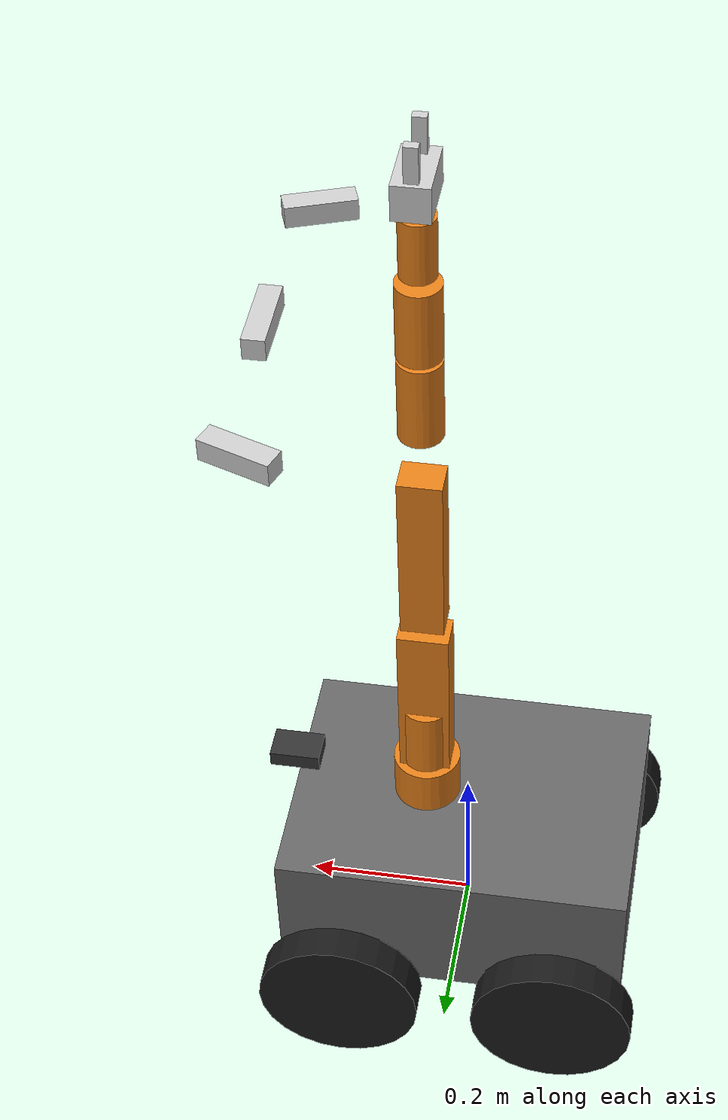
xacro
<?xml version="1.0"?>
<robot xmlns:xacro="http://www.ros.org/wiki/xacro" name="fire_robot">

  <xacro:property name="base_length"  value="0.420"/>
  <xacro:property name="base_width"   value="0.310"/>
  <xacro:property name="base_height"  value="0.184"/>
  <xacro:property name="wheel_radius" value="0.098"/>
  <xacro:property name="wheel_width"  value="0.040"/>
  <xacro:property name="wheelbase"   value="0.262"/>
  <xacro:property name="track"       value="0.37559"/>
  <xacro:property name="base_mass"    value="16.523"/>
  <xacro:property name="wheel_mass"   value="0.477"/>
  <xacro:property name="camera_z"     value="0.7890"/>
  <xacro:property name="camera_pitch" value="0.0"/>
  <xacro:property name="enable_sim_depth_camera" value="false"/>

  <xacro:macro name="box_inertia" params="m x y z">
    <inertial>
      <mass value="${m}"/>
      <inertia ixx="${m*(y*y+z*z)/12}" ixy="0" ixz="0"
               iyy="${m*(x*x+z*z)/12}" iyz="0"
               izz="${m*(x*x+y*y)/12}"/>
    </inertial>
  </xacro:macro>

  <xacro:macro name="cylinder_inertia" params="m r h">
    <inertial>
      <mass value="${m}"/>
      <inertia ixx="${m*(3*r*r+h*h)/12}" ixy="0" ixz="0"
               iyy="${m*(3*r*r+h*h)/12}" iyz="0"
               izz="${m*r*r/2}"/>
    </inertial>
  </xacro:macro>

  <!-- ============ base_footprint ============ -->
  <link name="base_footprint"/>

  <joint name="base_footprint_joint" type="fixed">
    <parent link="base_footprint"/>
    <child  link="base_link"/>
    <origin xyz="0 0 ${wheel_radius}" rpy="0 0 0"/>
  </joint>

  <!-- ============ 모바일 베이스 ============ -->
  <link name="base_link">
    <xacro:box_inertia m="${base_mass}"
                       x="${base_length}" y="${base_width}" z="${base_height}"/>
    <visual>
      <geometry>
        <box size="${base_length} ${base_width} ${base_height}"/>
      </geometry>
      <material name="gray"><color rgba="0.4 0.4 0.4 1.0"/></material>
    </visual>
    <collision>
      <geometry>
        <box size="${base_length} ${base_width} ${base_height}"/>
      </geometry>
    </collision>
  </link>

  <!-- ============ 바퀴 매크로 ============ -->
  <xacro:macro name="wheel" params="name x_pos y_pos">
    <link name="${name}_wheel">
      <xacro:cylinder_inertia m="${wheel_mass}" r="${wheel_radius}" h="${wheel_width}"/>
      <visual>
        <origin xyz="0 0 0" rpy="${pi/2} 0 0"/>
        <geometry>
          <cylinder radius="${wheel_radius}" length="${wheel_width}"/>
        </geometry>
        <material name="black"><color rgba="0.1 0.1 0.1 1.0"/></material>
      </visual>
      <collision>
        <origin xyz="0 0 0" rpy="${pi/2} 0 0"/>
        <geometry>
          <cylinder radius="${wheel_radius}" length="${wheel_width}"/>
        </geometry>
      </collision>
    </link>

    <joint name="${name}_wheel_joint" type="continuous">
      <parent link="base_link"/>
      <child  link="${name}_wheel"/>
      <origin xyz="${x_pos} ${y_pos} ${-base_height/2}" rpy="0 0 0"/>
      <axis xyz="0 1 0"/>
    </joint>
  </xacro:macro>

  <xacro:wheel name="front_left"  x_pos="${wheelbase/2}" y_pos="${track/2}"/>
  <xacro:wheel name="front_right" x_pos="${wheelbase/2}" y_pos="${-track/2}"/>
  <xacro:wheel name="rear_left"   x_pos="${-wheelbase/2}" y_pos="${track/2}"/>
  <xacro:wheel name="rear_right"  x_pos="${-wheelbase/2}" y_pos="${-track/2}"/>

  <!-- ============ 2D LiDAR ============ -->
  <link name="lidar_link">
    <visual>
      <geometry><box size="0.06 0.04 0.02"/></geometry>
      <material name="dark_gray"><color rgba="0.2 0.2 0.2 1.0"/></material>
    </visual>
    <collision>
      <geometry><box size="0.06 0.04 0.02"/></geometry>
    </collision>
    <inertial>
      <mass value="0.20"/>
      <inertia ixx="0.0001" ixy="0" ixz="0" iyy="0.0001" iyz="0" izz="0.0001"/>
    </inertial>
  </link>

  <joint name="lidar_joint" type="fixed">
    <parent link="base_link"/>
    <child  link="lidar_link"/>
    <origin xyz="${base_length/2} 0 ${base_height/2 + 0.04}" rpy="0 0 0"/>
  </joint>

  <!-- ============ RGB-D 카메라 마운트 ============ -->
  <link name="camera_link">
    <visual>
      <geometry><box size="0.025 0.090 0.025"/></geometry>
      <material name="silver"><color rgba="0.8 0.8 0.8 1.0"/></material>
    </visual>
    <collision>
      <geometry><box size="0.025 0.090 0.025"/></geometry>
    </collision>
    <inertial>
      <mass value="0.072"/>
      <inertia ixx="0.0001" ixy="0" ixz="0" iyy="0.0001" iyz="0" izz="0.0001"/>
    </inertial>
  </link>

  <joint name="camera_joint" type="fixed">
    <parent link="base_link"/>
    <child  link="camera_link"/>
    <!-- 베이스 전방 상단에 전방 하향 8도 틸트 -->
    <origin xyz="${base_length/2} 0 ${camera_z}" rpy="0 ${camera_pitch} 0"/>
  </joint>

  <!-- 카메라 광학 프레임 (ROS 컨벤션: Z 앞, X 오른쪽) -->
  <link name="camera_color_optical_frame"/>
  <joint name="camera_optical_joint" type="fixed">
    <parent link="camera_link"/>
    <child  link="camera_color_optical_frame"/>
    <origin xyz="0 0 0" rpy="${-pi/2} 0 ${-pi/2}"/>
  </joint>

  <!-- 전방 좌/우 보조 카메라: 벽면 문을 주행 중 미리 보기 위한 45도 시야 -->
  <link name="camera_front_left_link">
    <visual>
      <geometry><box size="0.025 0.080 0.025"/></geometry>
      <material name="silver"><color rgba="0.8 0.8 0.8 1.0"/></material>
    </visual>
    <collision>
      <geometry><box size="0.025 0.080 0.025"/></geometry>
    </collision>
    <inertial>
      <mass value="0.060"/>
      <inertia ixx="0.0001" ixy="0" ixz="0" iyy="0.0001" iyz="0" izz="0.0001"/>
    </inertial>
  </link>

  <joint name="camera_front_left_joint" type="fixed">
    <parent link="base_link"/>
    <child  link="camera_front_left_link"/>
    <origin xyz="${base_length/2 - 0.02} 0.20 ${camera_z}" rpy="0 ${camera_pitch} 1.22173"/>
  </joint>

  <link name="camera_front_left_optical_frame"/>
  <joint name="camera_front_left_optical_joint" type="fixed">
    <parent link="camera_front_left_link"/>
    <child  link="camera_front_left_optical_frame"/>
    <origin xyz="0 0 0" rpy="${-pi/2} 0 ${-pi/2}"/>
  </joint>

  <link name="camera_front_right_link">
    <visual>
      <geometry><box size="0.025 0.080 0.025"/></geometry>
      <material name="silver"><color rgba="0.8 0.8 0.8 1.0"/></material>
    </visual>
    <collision>
      <geometry><box size="0.025 0.080 0.025"/></geometry>
    </collision>
    <inertial>
      <mass value="0.060"/>
      <inertia ixx="0.0001" ixy="0" ixz="0" iyy="0.0001" iyz="0" izz="0.0001"/>
    </inertial>
  </link>

  <joint name="camera_front_right_joint" type="fixed">
    <parent link="base_link"/>
    <child  link="camera_front_right_link"/>
    <origin xyz="${base_length/2 - 0.02} -0.20 ${camera_z}" rpy="0 ${camera_pitch} -1.22173"/>
  </joint>

  <link name="camera_front_right_optical_frame"/>
  <joint name="camera_front_right_optical_joint" type="fixed">
    <parent link="camera_front_right_link"/>
    <child  link="camera_front_right_optical_frame"/>
    <origin xyz="0 0 0" rpy="${-pi/2} 0 ${-pi/2}"/>
  </joint>

  <!-- ============ Depth Camera (RealSense D435 뎁스 모듈) ============ -->
  <!-- D435의 뎁스 모듈은 컬러 모듈과 같은 하우징 내 약 17.5mm 오프셋 -->
  <link name="depth_camera_link">
    <inertial>
      <mass value="0.001"/>
      <inertia ixx="0.000001" ixy="0" ixz="0"
               iyy="0.000001" iyz="0" izz="0.000001"/>
    </inertial>
  </link>
  <joint name="depth_camera_joint" type="fixed">
    <parent link="camera_link"/>
    <child  link="depth_camera_link"/>
    <origin xyz="0 -0.0175 0" rpy="0 0 0"/>
  </joint>

  <!-- Depth 광학 프레임 -->
  <link name="depth_optical_frame"/>
  <joint name="depth_optical_joint" type="fixed">
    <parent link="depth_camera_link"/>
    <child  link="depth_optical_frame"/>
    <origin xyz="0 0 0" rpy="${-pi/2} 0 ${-pi/2}"/>
  </joint>

  <!-- ============ PIPER 로봇팔 (6DoF 간략화) ============ -->
  <!-- 팔 베이스를 모바일 베이스 위 중앙에 탑재 -->
  <link name="arm_base_link">
    <visual>
      <geometry><cylinder radius="0.04" length="0.06"/></geometry>
      <material name="orange"><color rgba="0.9 0.5 0.1 1.0"/></material>
    </visual>
    <collision>
      <geometry><cylinder radius="0.04" length="0.06"/></geometry>
    </collision>
    <inertial>
      <mass value="0.5"/>
      <inertia ixx="0.001" ixy="0" ixz="0" iyy="0.001" iyz="0" izz="0.001"/>
    </inertial>
  </link>

  <joint name="arm_base_joint" type="fixed">
    <parent link="base_link"/>
    <child  link="arm_base_link"/>
    <origin xyz="0.05 0 ${base_height/2 + 0.03}" rpy="0 0 0"/>
  </joint>

  <!-- Joint 1 - 팔 회전 (Z축) -->
  <link name="arm_link1">
    <visual><geometry><cylinder radius="0.03" length="0.12"/></geometry>
      <material name="orange"><color rgba="0.9 0.5 0.1 1.0"/></material></visual>
    <collision><geometry><cylinder radius="0.03" length="0.12"/></geometry></collision>
    <xacro:cylinder_inertia m="0.4" r="0.03" h="0.12"/>
  </link>
  <joint name="joint1" type="revolute">
    <parent link="arm_base_link"/>
    <child  link="arm_link1"/>
    <origin xyz="0 0 0.06" rpy="0 0 0"/>
    <axis xyz="0 0 1"/>
    <limit lower="-3.14" upper="3.14" effort="30" velocity="1.5"/>
  </joint>

  <!-- Joint 2 - 어깨 (Y축) -->
  <link name="arm_link2">
    <visual><geometry><box size="0.06 0.04 0.25"/></geometry>
      <material name="orange"><color rgba="0.9 0.5 0.1 1.0"/></material></visual>
    <collision><geometry><box size="0.06 0.04 0.25"/></geometry></collision>
    <xacro:box_inertia m="0.5" x="0.06" y="0.04" z="0.25"/>
  </link>
  <joint name="joint2" type="revolute">
    <parent link="arm_link1"/>
    <child  link="arm_link2"/>
    <origin xyz="0 0 0.06" rpy="0 0 0"/>
    <axis xyz="0 1 0"/>
    <limit lower="-2.09" upper="2.09" effort="30" velocity="1.5"/>
  </joint>

  <!-- Joint 3 - 팔꿈치 (Y축) -->
  <link name="arm_link3">
    <visual><geometry><box size="0.05 0.04 0.22"/></geometry>
      <material name="orange"><color rgba="0.9 0.5 0.1 1.0"/></material></visual>
    <collision><geometry><box size="0.05 0.04 0.22"/></geometry></collision>
    <xacro:box_inertia m="0.4" x="0.05" y="0.04" z="0.22"/>
  </link>
  <joint name="joint3" type="revolute">
    <parent link="arm_link2"/>
    <child  link="arm_link3"/>
    <origin xyz="0 0 0.25" rpy="0 0 0"/>
    <axis xyz="0 1 0"/>
    <limit lower="-2.44" upper="2.44" effort="20" velocity="1.5"/>
  </joint>

  <!-- Joint 4 - 손목 Roll (X축) -->
  <link name="arm_link4">
    <visual><geometry><cylinder radius="0.025" length="0.10"/></geometry>
      <material name="orange"><color rgba="0.9 0.5 0.1 1.0"/></material></visual>
    <collision><geometry><cylinder radius="0.025" length="0.10"/></geometry></collision>
    <xacro:cylinder_inertia m="0.2" r="0.025" h="0.10"/>
  </link>
  <joint name="joint4" type="revolute">
    <parent link="arm_link3"/>
    <child  link="arm_link4"/>
    <origin xyz="0 0 0.22" rpy="0 0 0"/>
    <axis xyz="1 0 0"/>
    <limit lower="-3.14" upper="3.14" effort="10" velocity="2.0"/>
  </joint>

  <!-- Joint 5 - 손목 Pitch (Y축) -->
  <link name="arm_link5">
    <visual><geometry><cylinder radius="0.025" length="0.09"/></geometry>
      <material name="orange"><color rgba="0.9 0.5 0.1 1.0"/></material></visual>
    <collision><geometry><cylinder radius="0.025" length="0.09"/></geometry></collision>
    <xacro:cylinder_inertia m="0.2" r="0.025" h="0.09"/>
  </link>
  <joint name="joint5" type="revolute">
    <parent link="arm_link4"/>
    <child  link="arm_link5"/>
    <origin xyz="0 0 0.10" rpy="0 0 0"/>
    <axis xyz="0 1 0"/>
    <limit lower="-1.57" upper="1.57" effort="10" velocity="2.0"/>
  </joint>

  <!-- Joint 6 - 손목 Yaw (Z축) -->
  <link name="arm_link6">
    <visual><geometry><cylinder radius="0.02" length="0.07"/></geometry>
      <material name="orange"><color rgba="0.9 0.5 0.1 1.0"/></material></visual>
    <collision><geometry><cylinder radius="0.02" length="0.07"/></geometry></collision>
    <xacro:cylinder_inertia m="0.15" r="0.02" h="0.07"/>
  </link>
  <joint name="joint6" type="revolute">
    <parent link="arm_link5"/>
    <child  link="arm_link6"/>
    <origin xyz="0 0 0.09" rpy="0 0 0"/>
    <axis xyz="0 0 1"/>
    <limit lower="-3.14" upper="3.14" effort="5" velocity="2.0"/>
  </joint>

  <!-- ============ 그리퍼 ============ -->
  <link name="gripper_base_link">
    <visual><geometry><box size="0.04 0.07 0.04"/></geometry>
      <material name="silver"><color rgba="0.8 0.8 0.8 1.0"/></material></visual>
    <collision><geometry><box size="0.04 0.07 0.04"/></geometry></collision>
    <xacro:box_inertia m="0.1" x="0.04" y="0.07" z="0.04"/>
  </link>
  <joint name="gripper_base_joint" type="fixed">
    <parent link="arm_link6"/>
    <child  link="gripper_base_link"/>
    <origin xyz="0 0 0.07" rpy="0 0 0"/>
  </joint>

  <link name="gripper_finger_left">
    <visual><geometry><box size="0.015 0.01 0.06"/></geometry>
      <material name="silver"><color rgba="0.8 0.8 0.8 1.0"/></material></visual>
    <collision><geometry><box size="0.015 0.01 0.06"/></geometry></collision>
    <xacro:box_inertia m="0.02" x="0.015" y="0.01" z="0.06"/>
  </link>
  <joint name="gripper_left_joint" type="prismatic">
    <parent link="gripper_base_link"/>
    <child  link="gripper_finger_left"/>
    <origin xyz="0 0.025 0.03" rpy="0 0 0"/>
    <axis xyz="0 1 0"/>
    <limit lower="0.0" upper="0.04" effort="5" velocity="0.1"/>
  </joint>

  <link name="gripper_finger_right">
    <visual><geometry><box size="0.015 0.01 0.06"/></geometry>
      <material name="silver"><color rgba="0.8 0.8 0.8 1.0"/></material></visual>
    <collision><geometry><box size="0.015 0.01 0.06"/></geometry></collision>
    <xacro:box_inertia m="0.02" x="0.015" y="0.01" z="0.06"/>
  </link>
  <joint name="gripper_right_joint" type="prismatic">
    <parent link="gripper_base_link"/>
    <child  link="gripper_finger_right"/>
    <origin xyz="0 -0.025 0.03" rpy="0 0 0"/>
    <axis xyz="0 -1 0"/>
    <limit lower="0.0" upper="0.04" effort="5" velocity="0.1"/>
  </joint>

  <gazebo reference="gripper_finger_left">
    <mu1>8.0</mu1>
    <mu2>8.0</mu2>
    <kp>1000000.0</kp>
    <kd>50.0</kd>
    <minDepth>0.001</minDepth>
  </gazebo>

  <gazebo reference="gripper_finger_right">
    <mu1>8.0</mu1>
    <mu2>8.0</mu2>
    <kp>1000000.0</kp>
    <kd>50.0</kd>
    <minDepth>0.001</minDepth>
  </gazebo>

  <!-- ============ Gazebo Ignition 플러그인 ============ -->

  <!-- 2D LiDAR range sensor (Gazebo uses gpu_lidar internally) -->
  <gazebo reference="lidar_link">
    <sensor name="lidar_sensor" type="gpu_lidar">
      <always_on>true</always_on>
      <visualize>false</visualize>
      <update_rate>12</update_rate>
      <topic>scan</topic>
      <gz_frame_id>lidar_link</gz_frame_id>
      <lidar>
        <scan>
          <horizontal>
            <samples>720</samples>
            <resolution>1</resolution>
            <min_angle>-3.14159</min_angle>
            <max_angle>3.14159</max_angle>
          </horizontal>
          <vertical>
            <samples>1</samples>
            <resolution>1</resolution>
            <min_angle>0</min_angle>
            <max_angle>0</max_angle>
          </vertical>
        </scan>
        <range>
          <min>0.15</min>
          <max>12.0</max>
          <resolution>0.05</resolution>
        </range>
        <noise type="gaussian">
          <mean>0.0</mean>
          <stddev>0.05</stddev>
        </noise>
      </lidar>
    </sensor>
  </gazebo>

  <!-- RGB 카메라 (Ignition camera 센서) -->
  <gazebo reference="camera_link">
    <sensor name="rgb_camera" type="camera">
      <always_on>true</always_on>
      <visualize>false</visualize>
      <update_rate>6</update_rate>
      <topic>camera_raw</topic>
      <gz_frame_id>camera_color_optical_frame</gz_frame_id>
      <camera name="rgb">
        <horizontal_fov>1.204</horizontal_fov>
        <image>
          <width>320</width>
          <height>240</height>
          <format>R8G8B8</format>
        </image>
        <clip>
          <near>0.1</near>
          <far>10.0</far>
        </clip>
        <noise>
          <type>gaussian</type>
          <mean>0.0</mean>
          <stddev>0.007</stddev>
        </noise>
      </camera>
    </sensor>
  </gazebo>

  <!-- 전방 좌측 카메라 -->
  <gazebo reference="camera_front_left_link">
    <sensor name="rgb_camera_front_left" type="camera">
      <always_on>true</always_on>
      <visualize>false</visualize>
      <update_rate>6</update_rate>
      <topic>camera_front_left_raw</topic>
      <gz_frame_id>camera_front_left_optical_frame</gz_frame_id>
      <camera name="rgb_front_left">
        <horizontal_fov>1.204</horizontal_fov>
        <image>
          <width>320</width>
          <height>240</height>
          <format>R8G8B8</format>
        </image>
        <clip>
          <near>0.1</near>
          <far>10.0</far>
        </clip>
        <noise>
          <type>gaussian</type>
          <mean>0.0</mean>
          <stddev>0.007</stddev>
        </noise>
      </camera>
    </sensor>
  </gazebo>

  <!-- 전방 우측 카메라 -->
  <gazebo reference="camera_front_right_link">
    <sensor name="rgb_camera_front_right" type="camera">
      <always_on>true</always_on>
      <visualize>false</visualize>
      <update_rate>6</update_rate>
      <topic>camera_front_right_raw</topic>
      <gz_frame_id>camera_front_right_optical_frame</gz_frame_id>
      <camera name="rgb_front_right">
        <horizontal_fov>1.204</horizontal_fov>
        <image>
          <width>320</width>
          <height>240</height>
          <format>R8G8B8</format>
        </image>
        <clip>
          <near>0.1</near>
          <far>10.0</far>
        </clip>
        <noise>
          <type>gaussian</type>
          <mean>0.0</mean>
          <stddev>0.007</stddev>
        </noise>
      </camera>
    </sensor>
  </gazebo>

  <!-- Depth Camera (Ignition rgbd_camera: RGB + Depth + PointCloud) -->
  <xacro:if value="${enable_sim_depth_camera}">
  <gazebo reference="depth_camera_link">
    <sensor name="depth_camera" type="rgbd_camera">
      <always_on>true</always_on>
      <visualize>false</visualize>
      <update_rate>5</update_rate>
      <topic>depth_camera</topic>
      <gz_frame_id>depth_optical_frame</gz_frame_id>
      <camera name="depth">
        <horizontal_fov>1.204</horizontal_fov>
        <image>
          <width>320</width>
          <height>240</height>
          <format>R8G8B8</format>
        </image>
        <clip>
          <near>0.1</near>
          <far>10.0</far>
        </clip>
        <noise>
          <type>gaussian</type>
          <mean>0.0</mean>
          <stddev>0.003</stddev>
        </noise>
      </camera>
    </sensor>
  </gazebo>
  </xacro:if>

  <!-- 차동 구동 (Ignition DiffDrive 시스템) -->
  <gazebo>
    <plugin filename="gz-sim-diff-drive-system"
            name="gz::sim::systems::DiffDrive">
      <left_joint>front_left_wheel_joint</left_joint>
      <left_joint>rear_left_wheel_joint</left_joint>
      <right_joint>front_right_wheel_joint</right_joint>
      <right_joint>rear_right_wheel_joint</right_joint>
      <!-- Clearpath j100 reference: track=0.37559 m, wheel_radius=0.098 m -->
      <wheel_separation>0.37559</wheel_separation>
      <wheel_radius>0.098</wheel_radius>
      <odom_publish_frequency>20</odom_publish_frequency>
      <topic>cmd_vel</topic>
      <odom_topic>wheel_odom</odom_topic>
      <tf_topic>wheel_tf</tf_topic>
      <frame_id>odom</frame_id>
      <child_frame_id>base_footprint</child_frame_id>
      <max_linear_acceleration>1.0</max_linear_acceleration>
    </plugin>
  </gazebo>

  <gazebo>
    <plugin filename="ignition-gazebo-odometry-publisher-system"
            name="ignition::gazebo::systems::OdometryPublisher">
      <odom_frame>odom</odom_frame>
      <robot_base_frame>base_footprint</robot_base_frame>
      <odom_topic>odom</odom_topic>
      <tf_topic>tf</tf_topic>
      <odom_publish_frequency>30</odom_publish_frequency>
      <dimensions>2</dimensions>
    </plugin>
  </gazebo>

  <!-- 조인트 상태 발행 (Ignition JointStatePublisher 시스템) -->
  <gazebo>
    <plugin filename="gz-sim-joint-state-publisher-system"
            name="gz::sim::systems::JointStatePublisher">
      <topic>joint_states</topic>
    </plugin>
  </gazebo>

  <!-- Sim-only PIPER joint position controllers.
       manipulation_node publishes simple approach/grasp/push/home poses so the
       arm visibly participates in Gazebo door-opening validation. -->
  <gazebo>
    <plugin filename="ignition-gazebo-joint-position-controller-system"
            name="gz::sim::systems::JointPositionController">
      <joint_name>joint1</joint_name>
      <topic>/fire_robot/sim_arm/joint1_cmd</topic>
      <p_gain>5.0</p_gain>
      <d_gain>0.2</d_gain>
      <cmd_max>80</cmd_max>
      <cmd_min>-80</cmd_min>
    </plugin>
    <plugin filename="ignition-gazebo-joint-position-controller-system"
            name="gz::sim::systems::JointPositionController">
      <joint_name>joint2</joint_name>
      <topic>/fire_robot/sim_arm/joint2_cmd</topic>
      <!-- Hold the upright home pose against gravity without sustained sway. -->
      <p_gain>35.0</p_gain>
      <d_gain>3.0</d_gain>
      <cmd_max>30</cmd_max>
      <cmd_min>-30</cmd_min>
    </plugin>
    <plugin filename="ignition-gazebo-joint-position-controller-system"
            name="gz::sim::systems::JointPositionController">
      <joint_name>joint3</joint_name>
      <topic>/fire_robot/sim_arm/joint3_cmd</topic>
      <p_gain>20.0</p_gain>
      <d_gain>1.5</d_gain>
      <cmd_max>20</cmd_max>
      <cmd_min>-20</cmd_min>
    </plugin>
    <plugin filename="ignition-gazebo-joint-position-controller-system"
            name="gz::sim::systems::JointPositionController">
      <joint_name>joint4</joint_name>
      <topic>/fire_robot/sim_arm/joint4_cmd</topic>
      <p_gain>4.0</p_gain>
      <d_gain>0.15</d_gain>
      <cmd_max>50</cmd_max>
      <cmd_min>-50</cmd_min>
    </plugin>
    <plugin filename="ignition-gazebo-joint-position-controller-system"
            name="gz::sim::systems::JointPositionController">
      <joint_name>joint5</joint_name>
      <topic>/fire_robot/sim_arm/joint5_cmd</topic>
      <p_gain>4.0</p_gain>
      <d_gain>0.15</d_gain>
      <cmd_max>50</cmd_max>
      <cmd_min>-50</cmd_min>
    </plugin>
    <plugin filename="ignition-gazebo-joint-position-controller-system"
            name="gz::sim::systems::JointPositionController">
      <joint_name>joint6</joint_name>
      <topic>/fire_robot/sim_arm/joint6_cmd</topic>
      <p_gain>3.0</p_gain>
      <d_gain>0.1</d_gain>
      <cmd_max>30</cmd_max>
      <cmd_min>-30</cmd_min>
    </plugin>
    <plugin filename="ignition-gazebo-joint-position-controller-system"
            name="gz::sim::systems::JointPositionController">
      <joint_name>gripper_left_joint</joint_name>
      <topic>/fire_robot/sim_arm/gripper_left_joint_cmd</topic>
      <p_gain>10.0</p_gain>
      <d_gain>0.2</d_gain>
      <cmd_max>80</cmd_max>
      <cmd_min>-80</cmd_min>
    </plugin>
    <plugin filename="ignition-gazebo-joint-position-controller-system"
            name="gz::sim::systems::JointPositionController">
      <joint_name>gripper_right_joint</joint_name>
      <topic>/fire_robot/sim_arm/gripper_right_joint_cmd</topic>
      <p_gain>10.0</p_gain>
      <d_gain>0.2</d_gain>
      <cmd_max>80</cmd_max>
      <cmd_min>-80</cmd_min>
    </plugin>
  </gazebo>

  <gazebo>
    <plugin filename="ignition-gazebo-detachable-joint-system"
            name="ignition::gazebo::systems::DetachableJoint">
      <parent_link>gripper_finger_left</parent_link>
      <child_model>blue_hinged_contact_door</child_model>
      <child_link>lever</child_link>
      <attach_topic>/fire_robot/sim_arm/handle_attach</attach_topic>
      <detach_topic>/fire_robot/sim_arm/handle_detach</detach_topic>
      <output_topic>/fire_robot/sim_arm/handle_attach_state</output_topic>
    </plugin>
  </gazebo>

</robot>
